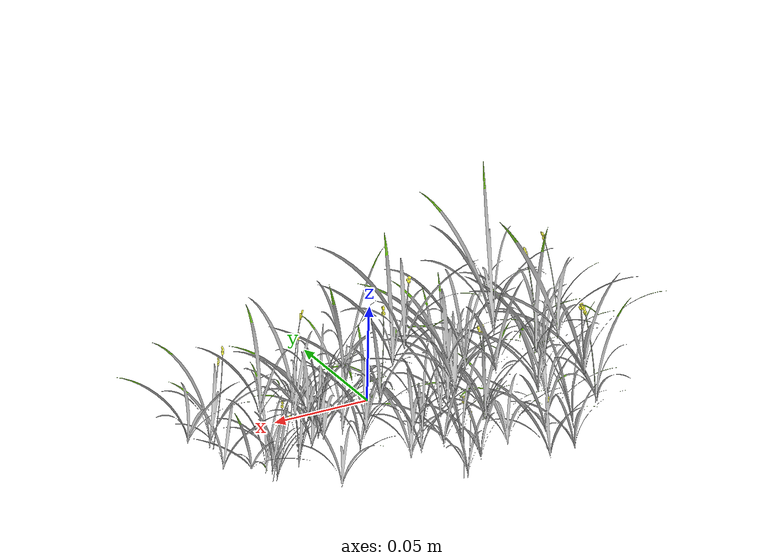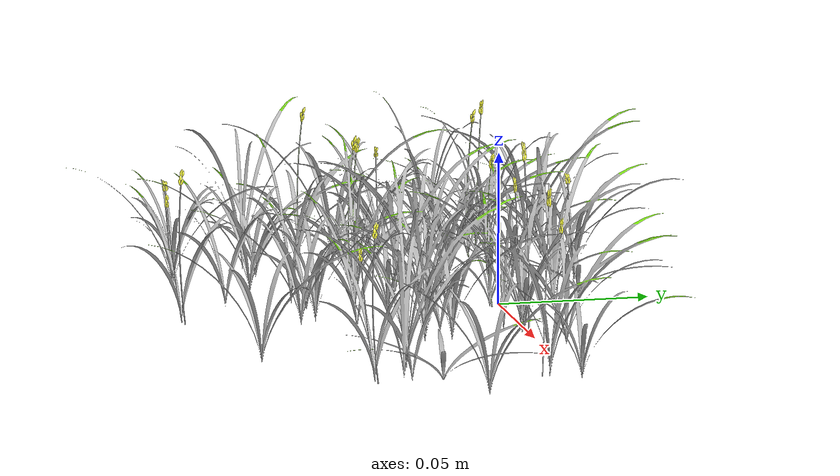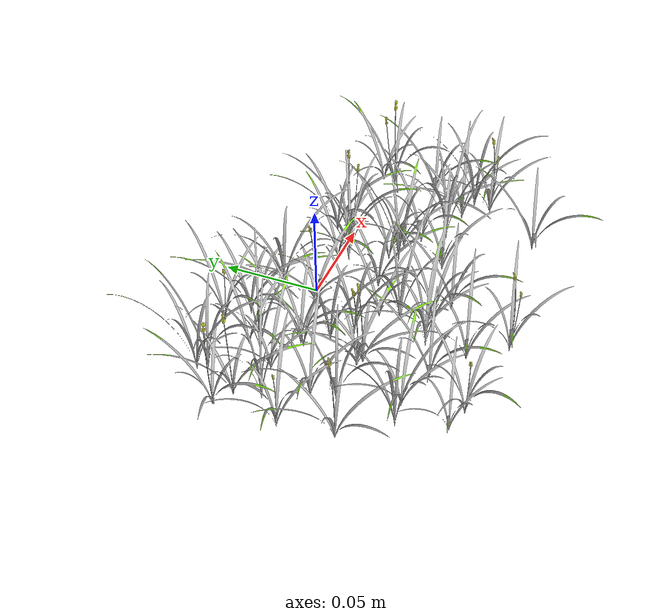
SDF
<?xml version='1.0'?>
<sdf version='1.7'>
  <model name='grass'>
	<static>true</static>
    <link name='link_0'>

		<collision name="collision">
		<geometry>
			<mesh>
				<uri>model://grass/mesh/model.dae</uri>
				<scale>0 0 0</scale>
			</mesh>
		</geometry>
		</collision>

		<visual name="visual">
		<cast_shadows>true</cast_shadows>
		<geometry>
			<mesh>
				<uri>model://grass/mesh/model.dae</uri>
				<scale>0.07 0.07 0.07</scale>
			</mesh>
		</geometry>
		</visual>
    </link>
  </model>
</sdf>
